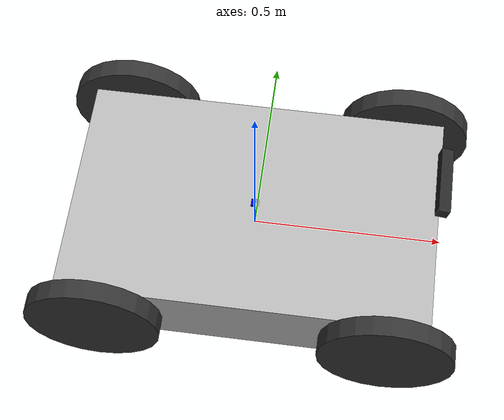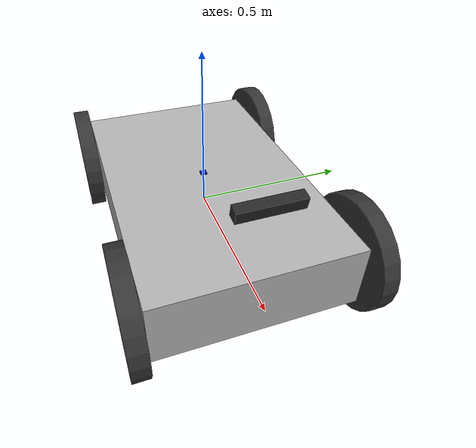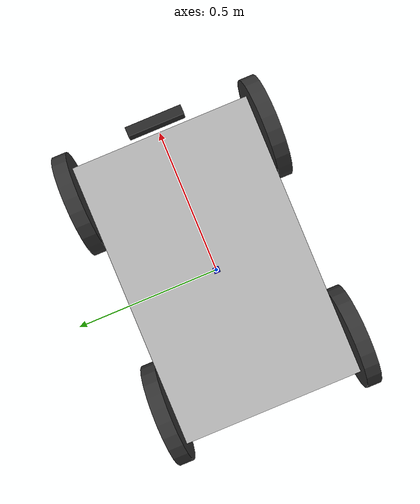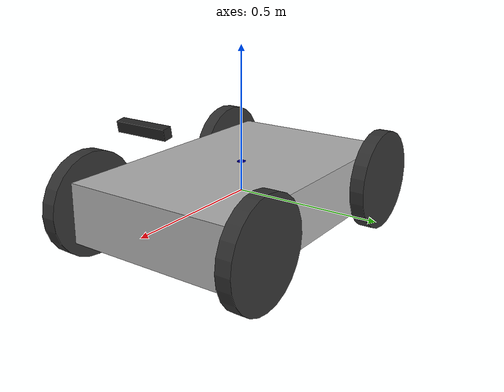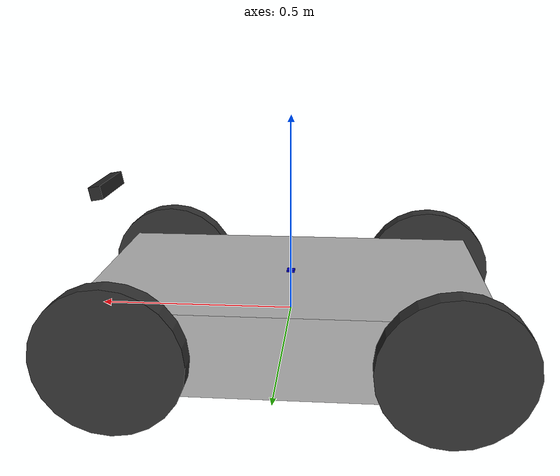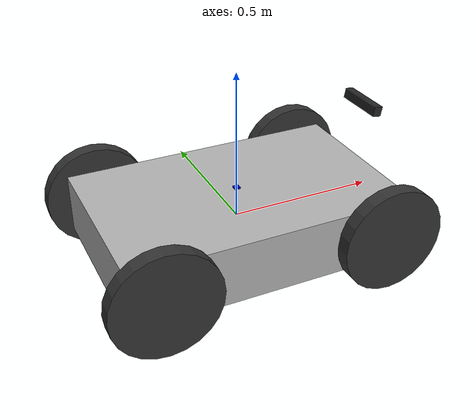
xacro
<?xml version="1.0"?>
<robot name="diffbot" xmlns:xacro="http://www.ros.org/wiki/xacro">

  <!-- =========================================================
       PARAMETERS
       ========================================================= -->
  <xacro:property name="base_length"  value="0.9652"/>  <!-- m front-to-back -->
  <xacro:property name="base_width"   value="0.6096"/>  <!-- m side-to-side  -->
  <xacro:property name="base_height"  value="0.2032"/>  <!-- m vertical (was 0.508, way too tall) -->
  <xacro:property name="base_mass"    value="43.88"/>

  <xacro:property name="wheel_radius" value="0.1778"/>
  <xacro:property name="wheel_width"  value="0.0508"/>
  <xacro:property name="wheel_mass"   value="0.78"/>

  <!-- wheels sit at the ends of the chassis, spread to match base width -->
  <xacro:property name="wheel_x_off"  value="0.381"/>   <!-- fore/aft from centre (~40% of half-length) -->
  <xacro:property name="wheel_y_off"  value="0.3356"/>  <!-- half track width (clears base_width/2 = 0.3048) + 2.54 cm clearence for tolerance -->

  <xacro:property name="base_z"       value="${wheel_radius}"/>

  <!-- Camera args (kept for compatibility with launch file) -->
  <xacro:arg name="camera_name"  default="zed2i"/>
  <xacro:arg name="camera_model" default="zed2i"/>

  <!-- =========================================================
       INERTIA MACROS
       ========================================================= -->
  <xacro:macro name="box_inertia" params="m x y z">
    <inertial>
      <mass value="${m}"/>
      <inertia
        ixx="${m*(y*y+z*z)/12}" ixy="0" ixz="0"
        iyy="${m*(x*x+z*z)/12}" iyz="0"
        izz="${m*(x*x+y*y)/12}"/>
    </inertial>
  </xacro:macro>

  <xacro:macro name="cylinder_inertia" params="m r h">
    <inertial>
      <mass value="${m}"/>
      <inertia
        ixx="${m*(3*r*r+h*h)/12}" ixy="0" ixz="0"
        iyy="${m*(3*r*r+h*h)/12}" iyz="0"
        izz="${m*r*r/2}"/>
    </inertial>
  </xacro:macro>

  <!-- =========================================================
       WHEEL MACRO
       ========================================================= -->
  <xacro:macro name="wheel" params="name x_sign y_sign">
    <link name="${name}_wheel">
      <visual>
        <origin xyz="0 0 0" rpy="${pi/2} 0 0"/>
        <geometry>
          <cylinder radius="${wheel_radius}" length="${wheel_width}"/>
        </geometry>
        <material name="dark_grey">
          <color rgba="0.2 0.2 0.2 1"/>
        </material>
      </visual>
      <collision>
        <origin xyz="0 0 0" rpy="${pi/2} 0 0"/>
        <geometry>
          <cylinder radius="${wheel_radius}" length="${wheel_width}"/>
        </geometry>
      </collision>
      <xacro:cylinder_inertia m="${wheel_mass}" r="${wheel_radius}" h="${wheel_width}"/>
    </link>

    <joint name="${name}_wheel_joint" type="continuous">
      <parent link="base_link"/>
      <child  link="${name}_wheel"/>
      <origin xyz="${x_sign * wheel_x_off} ${y_sign * wheel_y_off} 0" rpy="0 0 0"/>
      <axis xyz="0 1 0"/>
      <dynamics damping="0.05" friction="0.05"/>
      <limit effort="5000.0" velocity="10.0"/>
    </joint>

    <gazebo reference="${name}_wheel">
      <mu1>1.0</mu1>
      <mu2>1.0</mu2>
      <kp>1e6</kp>
      <kd>1.0</kd>
      <fdir1>1 0 0</fdir1>
      <slip1>0.01</slip1>
      <slip2>10.0</slip2> <!--I hate THIS so much-->
      <minDepth>0.001</minDepth>
      <maxVel>0.1</maxVel>
      <material>Gazebo/DarkGrey</material>
    </gazebo>
  </xacro:macro>

  <!-- =========================================================
       BASE LINK
       ========================================================= -->
  <link name="base_link">
    <visual>
      <origin xyz="0 0 0" rpy="0 0 0"/>
      <geometry>
        <box size="${base_length} ${base_width} ${base_height}"/>
      </geometry>
      <material name="light_grey">
        <color rgba="0.7 0.7 0.7 1"/>
      </material>
    </visual>
    <collision>
      <origin xyz="0 0 0" rpy="0 0 0"/>
      <geometry>
        <box size="${base_length} ${base_width} ${base_height}"/>
      </geometry>
    </collision>
    <xacro:box_inertia m="${base_mass}"
                       x="${base_length}" y="${base_width}" z="${base_height}"/>
  </link>

  <gazebo reference="base_link">
    <material>Gazebo/Grey</material>
  </gazebo>

  <!-- =========================================================
       FOUR WHEELS
       ========================================================= -->
  <xacro:wheel name="front_left"  x_sign=" 1" y_sign=" 1"/>
  <xacro:wheel name="front_right" x_sign=" 1" y_sign="-1"/>
  <xacro:wheel name="rear_left"   x_sign="-1" y_sign=" 1"/>
  <xacro:wheel name="rear_right"  x_sign="-1" y_sign="-1"/>

  <!-- =========================================================
       IMU LINK
       ========================================================= -->
  <link name="imu_link">
    <visual>
      <geometry><box size="0.02 0.02 0.01"/></geometry>
      <material name="blue"><color rgba="0 0 0.8 1"/></material>
    </visual>
    <inertial>
      <mass value="0.01"/>
      <inertia ixx="1e-6" ixy="0" ixz="0" iyy="1e-6" iyz="0" izz="1e-6"/>
    </inertial>
  </link>

  <joint name="imu_joint" type="fixed">
    <parent link="base_link"/>
    <child  link="imu_link"/>
    <origin xyz="0 0 ${base_height/2}" rpy="0 0 0"/>
  </joint>

  <!-- Main camera link (visual box approximates ZED2i body) -->
  <link name="zed2i_camera_link">
    <visual>
      <origin xyz="0 0 0" rpy="0 0 1.5708"/>
      <geometry>
        <box size="0.175 0.030 0.033"/>
      </geometry>
      <material name="dark_metal">
        <color rgba="0.15 0.15 0.15 1"/>
      </material>
    </visual>
    <collision>
      <origin xyz="0 0 0" rpy="0 0 0"/>
      <geometry>
        <box size="0.175 0.030 0.033"/>
      </geometry>
    </collision>
    <inertial>
      <mass value="0.159"/>
      <inertia ixx="1e-4" ixy="0" ixz="0" iyy="1e-4" iyz="0" izz="1e-4"/>
    </inertial>
  </link>

  <joint name="zed2i_camera_joint" type="fixed">
    <parent link="base_link"/>
    <child  link="zed2i_camera_link"/>
    <origin xyz="0.4676 0.0 ${base_height/2 + 0.2165}" rpy="0 0.174532925 0"/>
  </joint>

  <!-- Camera centre (optical reference point between the two lenses) -->
  <link name="zed2i_camera_center"/>
  <joint name="zed2i_camera_center_joint" type="fixed">
    <parent link="zed2i_camera_link"/>
    <child  link="zed2i_camera_center"/>
    <origin xyz="0 0 0" rpy="0 0 0"/>
  </joint>

  <!-- Left camera frame -->
  <link name="zed2i_left_camera_frame"/>
  <!-- Left lens: +60mm on Y -->
  <joint name="zed2i_left_camera_frame_joint" type="fixed">
    <parent link="zed2i_camera_center"/>
    <child link="zed2i_left_camera_frame"/>
    <origin rpy="0 0 0" xyz="0 0.06 0"/>   <!-- correct -->
  </joint>

  <!-- Left camera optical frame (Z forward, X right, Y down) -->
  <link name="zed2i_left_camera_frame_optical"/>
  <joint name="zed2i_left_camera_optical_joint" type="fixed">
    <parent link="zed2i_left_camera_frame"/>
    <child  link="zed2i_left_camera_frame_optical"/>
    <origin xyz="0 0 0" rpy="${-pi/2} 0 ${-pi/2}"/>
  </joint>

  <!-- Right camera frame -->
  <link name="zed2i_right_camera_frame"/>
  <!-- Right lens: -60mm on Y -->
  <joint name="zed2i_right_camera_frame_joint" type="fixed">
    <parent link="zed2i_camera_center"/>
    <child link="zed2i_right_camera_frame"/>
    <origin rpy="0 0 0" xyz="0 -0.06 0"/>  <!-- correct -->
  </joint>

  <!-- Right camera optical frame -->
  <link name="zed2i_right_camera_frame_optical"/>
  <joint name="zed2i_right_camera_optical_joint" type="fixed">
    <parent link="zed2i_right_camera_frame"/>
    <child  link="zed2i_right_camera_frame_optical"/>
    <origin xyz="0 0 0" rpy="${-pi/2} 0 ${-pi/2}"/>
  </joint>

  <gazebo reference="zed2i_left_camera_frame">
    <sensor name="zed2i_camera" type="rgbd_camera">
      <always_on>true</always_on>
      <update_rate>15</update_rate>
      <topic>camera/color</topic>
      <gz_frame_id>zed2i_camera_link</gz_frame_id>
      <camera>
        <horizontal_fov>1.9199</horizontal_fov>  <!-- ~103 deg, matches ZED2i -->
        <image>
          <width>640</width>
          <height>360</height>
          <format>R8G8B8</format>
        </image>
        <clip>
          <near>0.2</near>
          <far>20.0</far>
        </clip>
        <depth_camera>
          <output>depths</output>
        </depth_camera>
        <noise>
          <type>gaussian</type>
          <mean>0.0</mean>
          <stddev>0.01</stddev>
        </noise>
      </camera>
    </sensor>
  </gazebo>

  <!-- =========================================================
       GAZEBO PLUGINS
       ========================================================= -->

  <!-- Differential drive -->
  <gazebo>
    <plugin filename="ignition-gazebo-diff-drive-system"
            name="ignition::gazebo::systems::DiffDrive">
      <left_joint>front_left_wheel_joint</left_joint>
      <left_joint>rear_left_wheel_joint</left_joint>
      <right_joint>front_right_wheel_joint</right_joint>
      <right_joint>rear_right_wheel_joint</right_joint>
      <wheel_separation>0.6712</wheel_separation>
      <wheel_radius>0.1778</wheel_radius>
      <topic>cmd_vel</topic>
      <odom_topic>odom</odom_topic>
      <tf_topic>tf</tf_topic>
      <frame_id>odom</frame_id>
      <child_frame_id>base_link</child_frame_id>
      <max_linear_acceleration>10.0</max_linear_acceleration>
      <max_angular_acceleration>10.0</max_angular_acceleration>
      <max_angular_velocity>0.3</max_angular_velocity>
      <max_linear_velocity>1.0</max_linear_velocity>
      <publish_odom>false</publish_odom>
      <publish_wheel_tf>false</publish_wheel_tf>
      <publish_odom_tf>false</publish_odom_tf>
    </plugin>
  </gazebo>

  <!-- Joint state publisher -->
  <gazebo>
    <plugin filename="ignition-gazebo-joint-state-publisher-system"
            name="ignition::gazebo::systems::JointStatePublisher">
      <topic>joint_states</topic>
      <update_rate>50</update_rate>
    </plugin>
  </gazebo>

  <!-- =========================================================
       GAZEBO PLUGINS
       ========================================================= -->

  <gazebo reference="imu_link">
    <sensor name="imu_sensor" type="imu">
      <always_on>true</always_on>
      <update_rate>400</update_rate>
      <topic>imu</topic>
      <gz_frame_id>imu_link</gz_frame_id>
      <imu>
        <angular_velocity>
          <!-- BMI080 gyro: 0.015 deg/s/√Hz → ~0.00026 rad/s/√Hz -->
          <!-- At 400Hz: stddev ≈ 0.00026 * √400 = 0.0052 rad/s -->
          <x><noise type="gaussian"><mean>0</mean><stddev>0.0052</stddev></noise></x>
          <y><noise type="gaussian"><mean>0</mean><stddev>0.0052</stddev></noise></y>
          <z><noise type="gaussian"><mean>0</mean><stddev>0.0052</stddev></noise></z>
        </angular_velocity>
        <linear_acceleration>
          <!-- BMI080 accel: 230 μg/√Hz → 0.00230 m/s²/√Hz -->
          <!-- At 200Hz: stddev ≈ 0.00230 * √200 = 0.0325 m/s² -->
          <x><noise type="gaussian"><mean>0</mean><stddev>0.0325</stddev></noise></x>
          <y><noise type="gaussian"><mean>0</mean><stddev>0.0325</stddev></noise></y>
          <z><noise type="gaussian"><mean>0</mean><stddev>0.0325</stddev></noise></z>
        </linear_acceleration>
      </imu>
    </sensor>
  </gazebo>

  <!-- IMU system plugin (required for sensor to publish) -->
  <gazebo>
    <plugin filename="ignition-gazebo-imu-system"
            name="ignition::gazebo::systems::Imu"/>
  </gazebo>

</robot>
